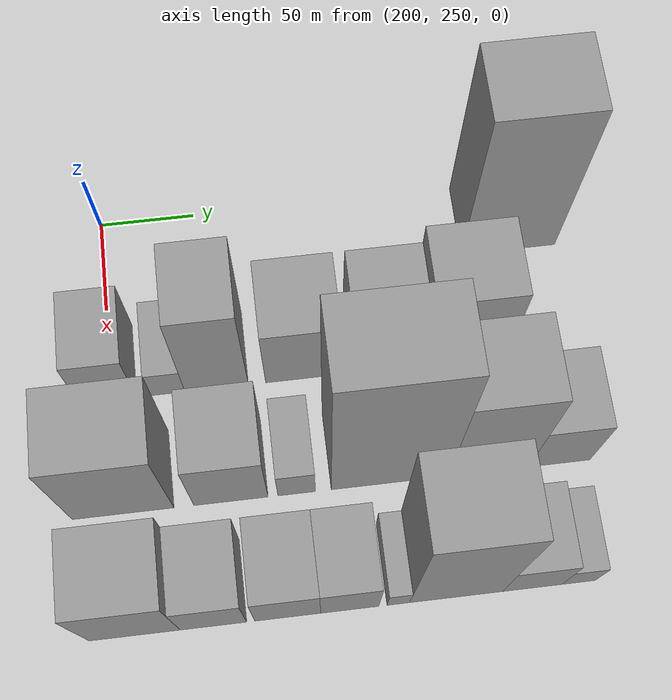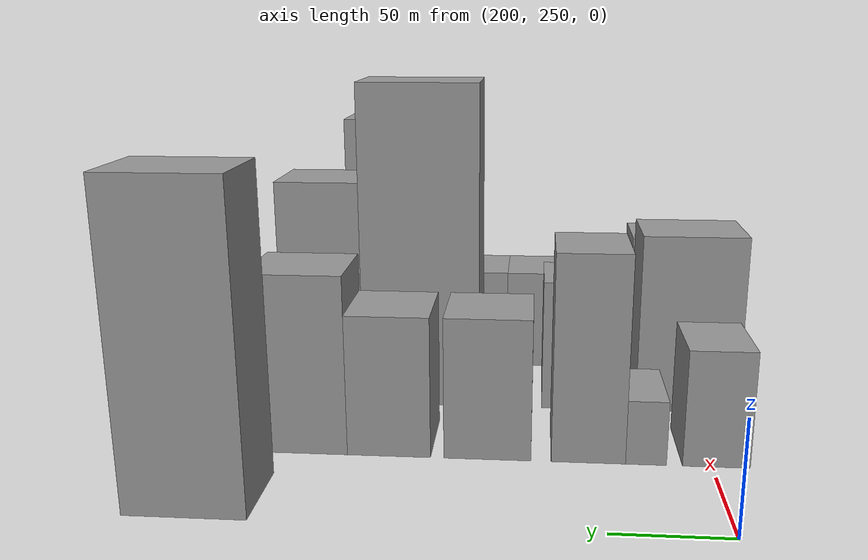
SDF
<sdf version="1.6">
 <world name="default">
  <model name="building_151">
   <static>1</static>
   <pose>220.0000 467.1917 0 0.000000 0.000000 0.000000</pose>
   <link name="link">
    <pose>0 0 69.00 0 0 0</pose>
    <collision name="collision"><geometry><box><size>40.0000 51.3293 138.0000</size></box></geometry></collision>
    <visual name="visual">
     <cast_shadows>0</cast_shadows>
     <geometry><box><size>40.0000 51.3293 138.0000</size></box></geometry>
     <material>
      <script>
       <uri>model://grey_wall/materials/scripts</uri>
       <uri>model://grey_wall/materials/textures</uri>
       <name>vrc/grey_wall</name>
      </script>
     </material>
    </visual>
   </link>
  </model>
  <model name="building_204">
   <static>1</static>
   <pose>280.0000 248.2502 0 0.000000 0.000000 0.000000</pose>
   <link name="link">
    <pose>0 0 27.00 0 0 0</pose>
    <collision name="collision"><geometry><box><size>40.0000 29.5138 54.0000</size></box></geometry></collision>
    <visual name="visual">
     <cast_shadows>0</cast_shadows>
     <geometry><box><size>40.0000 29.5138 54.0000</size></box></geometry>
     <material>
      <script>
       <uri>model://grey_wall/materials/scripts</uri>
       <uri>model://grey_wall/materials/textures</uri>
       <name>vrc/grey_wall</name>
      </script>
     </material>
    </visual>
   </link>
  </model>
  <model name="building_205">
   <static>1</static>
   <pose>280.0000 279.0065 0 0.000000 0.000000 0.000000</pose>
   <link name="link">
    <pose>0 0 15.00 0 0 0</pose>
    <collision name="collision"><geometry><box><size>40.0000 17.9990 30.0000</size></box></geometry></collision>
    <visual name="visual">
     <cast_shadows>0</cast_shadows>
     <geometry><box><size>40.0000 17.9990 30.0000</size></box></geometry>
     <material>
      <script>
       <uri>model://grey_wall/materials/scripts</uri>
       <uri>model://grey_wall/materials/textures</uri>
       <name>vrc/grey_wall</name>
      </script>
     </material>
    </visual>
   </link>
  </model>
  <model name="building_206">
   <static>1</static>
   <pose>280.0000 304.4706 0 0.000000 0.000000 0.000000</pose>
   <link name="link">
    <pose>0 0 48.00 0 0 0</pose>
    <collision name="collision"><geometry><box><size>40.0000 32.9291 96.0000</size></box></geometry></collision>
    <visual name="visual">
     <cast_shadows>0</cast_shadows>
     <geometry><box><size>40.0000 32.9291 96.0000</size></box></geometry>
     <material>
      <script>
       <uri>model://grey_wall/materials/scripts</uri>
       <uri>model://grey_wall/materials/textures</uri>
       <name>vrc/grey_wall</name>
      </script>
     </material>
    </visual>
   </link>
  </model>
  <model name="building_207">
   <static>1</static>
   <pose>280.0000 349.5330 0 0.000000 0.000000 0.000000</pose>
   <link name="link">
    <pose>0 0 33.00 0 0 0</pose>
    <collision name="collision"><geometry><box><size>40.0000 39.1957 66.0000</size></box></geometry></collision>
    <visual name="visual">
     <cast_shadows>0</cast_shadows>
     <geometry><box><size>40.0000 39.1957 66.0000</size></box></geometry>
     <material>
      <script>
       <uri>model://grey_wall/materials/scripts</uri>
       <uri>model://grey_wall/materials/textures</uri>
       <name>vrc/grey_wall</name>
      </script>
     </material>
    </visual>
   </link>
  </model>
  <model name="building_208">
   <static>1</static>
   <pose>280.0000 394.0871 0 0.000000 0.000000 0.000000</pose>
   <link name="link">
    <pose>0 0 33.00 0 0 0</pose>
    <collision name="collision"><geometry><box><size>40.0000 37.9124 66.0000</size></box></geometry></collision>
    <visual name="visual">
     <cast_shadows>0</cast_shadows>
     <geometry><box><size>40.0000 37.9124 66.0000</size></box></geometry>
     <material>
      <script>
       <uri>model://grey_wall/materials/scripts</uri>
       <uri>model://grey_wall/materials/textures</uri>
       <name>vrc/grey_wall</name>
      </script>
     </material>
    </visual>
   </link>
  </model>
  <model name="building_209">
   <static>1</static>
   <pose>280.0000 434.7887 0 0.000000 0.000000 0.000000</pose>
   <link name="link">
    <pose>0 0 42.00 0 0 0</pose>
    <collision name="collision"><geometry><box><size>40.0000 43.4909 84.0000</size></box></geometry></collision>
    <visual name="visual">
     <cast_shadows>0</cast_shadows>
     <geometry><box><size>40.0000 43.4909 84.0000</size></box></geometry>
     <material>
      <script>
       <uri>model://grey_wall/materials/scripts</uri>
       <uri>model://grey_wall/materials/textures</uri>
       <name>vrc/grey_wall</name>
      </script>
     </material>
    </visual>
   </link>
  </model>
  <model name="building_259">
   <static>1</static>
   <pose>340.0000 252.5606 0 0.000000 0.000000 0.000000</pose>
   <link name="link">
    <pose>0 0 45.00 0 0 0</pose>
    <collision name="collision"><geometry><box><size>40.0000 50.7267 90.0000</size></box></geometry></collision>
    <visual name="visual">
     <cast_shadows>0</cast_shadows>
     <geometry><box><size>40.0000 50.7267 90.0000</size></box></geometry>
     <material>
      <script>
       <uri>model://grey_wall/materials/scripts</uri>
       <uri>model://grey_wall/materials/textures</uri>
       <name>vrc/grey_wall</name>
      </script>
     </material>
    </visual>
   </link>
  </model>
  <model name="building_260">
   <static>1</static>
   <pose>340.0000 306.5453 0 0.000000 0.000000 0.000000</pose>
   <link name="link">
    <pose>0 0 33.00 0 0 0</pose>
    <collision name="collision"><geometry><box><size>40.0000 37.2428 66.0000</size></box></geometry></collision>
    <visual name="visual">
     <cast_shadows>0</cast_shadows>
     <geometry><box><size>40.0000 37.2428 66.0000</size></box></geometry>
     <material>
      <script>
       <uri>model://grey_wall/materials/scripts</uri>
       <uri>model://grey_wall/materials/textures</uri>
       <name>vrc/grey_wall</name>
      </script>
     </material>
    </visual>
   </link>
  </model>
  <model name="building_261">
   <static>1</static>
   <pose>340.0000 339.6156 0 0.000000 0.000000 0.000000</pose>
   <link name="link">
    <pose>0 0 18.00 0 0 0</pose>
    <collision name="collision"><geometry><box><size>40.0000 18.8978 36.0000</size></box></geometry></collision>
    <visual name="visual">
     <cast_shadows>0</cast_shadows>
     <geometry><box><size>40.0000 18.8978 36.0000</size></box></geometry>
     <material>
      <script>
       <uri>model://grey_wall/materials/scripts</uri>
       <uri>model://grey_wall/materials/textures</uri>
       <name>vrc/grey_wall</name>
      </script>
     </material>
    </visual>
   </link>
  </model>
  <model name="building_262">
   <static>1</static>
   <pose>340.0000 386.6657 0 0.000000 0.000000 0.000000</pose>
   <link name="link">
    <pose>0 0 81.00 0 0 0</pose>
    <collision name="collision"><geometry><box><size>40.0000 59.2025 162.0000</size></box></geometry></collision>
    <visual name="visual">
     <cast_shadows>0</cast_shadows>
     <geometry><box><size>40.0000 59.2025 162.0000</size></box></geometry>
     <material>
      <script>
       <uri>model://grey_wall/materials/scripts</uri>
       <uri>model://grey_wall/materials/textures</uri>
       <name>vrc/grey_wall</name>
      </script>
     </material>
    </visual>
   </link>
  </model>
  <model name="building_263">
   <static>1</static>
   <pose>340.0000 436.9140 0 0.000000 0.000000 0.000000</pose>
   <link name="link">
    <pose>0 0 57.00 0 0 0</pose>
    <collision name="collision"><geometry><box><size>40.0000 41.2940 114.0000</size></box></geometry></collision>
    <visual name="visual">
     <cast_shadows>0</cast_shadows>
     <geometry><box><size>40.0000 41.2940 114.0000</size></box></geometry>
     <material>
      <script>
       <uri>model://grey_wall/materials/scripts</uri>
       <uri>model://grey_wall/materials/textures</uri>
       <name>vrc/grey_wall</name>
      </script>
     </material>
    </visual>
   </link>
  </model>
  <model name="building_264">
   <static>1</static>
   <pose>340.0000 473.3008 0 0.000000 0.000000 0.000000</pose>
   <link name="link">
    <pose>0 0 30.00 0 0 0</pose>
    <collision name="collision"><geometry><box><size>40.0000 31.4795 60.0000</size></box></geometry></collision>
    <visual name="visual">
     <cast_shadows>0</cast_shadows>
     <geometry><box><size>40.0000 31.4795 60.0000</size></box></geometry>
     <material>
      <script>
       <uri>model://grey_wall/materials/scripts</uri>
       <uri>model://grey_wall/materials/textures</uri>
       <name>vrc/grey_wall</name>
      </script>
     </material>
    </visual>
   </link>
  </model>
  <model name="building_314">
   <static>1</static>
   <pose>400.0000 254.6489 0 0.000000 0.000000 0.000000</pose>
   <link name="link">
    <pose>0 0 37.50 0 0 0</pose>
    <collision name="collision"><geometry><box><size>40.0000 43.9401 75.0000</size></box></geometry></collision>
    <visual name="visual">
     <cast_shadows>0</cast_shadows>
     <geometry><box><size>40.0000 43.9401 75.0000</size></box></geometry>
     <material>
      <script>
       <uri>model://grey_wall/materials/scripts</uri>
       <uri>model://grey_wall/materials/textures</uri>
       <name>vrc/grey_wall</name>
      </script>
     </material>
    </visual>
   </link>
  </model>
  <model name="building_315">
   <static>1</static>
   <pose>400.0000 292.6887 0 0.000000 0.000000 0.000000</pose>
   <link name="link">
    <pose>0 0 27.00 0 0 0</pose>
    <collision name="collision"><geometry><box><size>40.0000 32.1395 54.0000</size></box></geometry></collision>
    <visual name="visual">
     <cast_shadows>0</cast_shadows>
     <geometry><box><size>40.0000 32.1395 54.0000</size></box></geometry>
     <material>
      <script>
       <uri>model://grey_wall/materials/scripts</uri>
       <uri>model://grey_wall/materials/textures</uri>
       <name>vrc/grey_wall</name>
      </script>
     </material>
    </visual>
   </link>
  </model>
  <model name="building_316">
   <static>1</static>
   <pose>400.0000 328.7437 0 0.000000 0.000000 0.000000</pose>
   <link name="link">
    <pose>0 0 27.00 0 0 0</pose>
    <collision name="collision"><geometry><box><size>40.0000 31.9705 54.0000</size></box></geometry></collision>
    <visual name="visual">
     <cast_shadows>0</cast_shadows>
     <geometry><box><size>40.0000 31.9705 54.0000</size></box></geometry>
     <material>
      <script>
       <uri>model://grey_wall/materials/scripts</uri>
       <uri>model://grey_wall/materials/textures</uri>
       <name>vrc/grey_wall</name>
      </script>
     </material>
    </visual>
   </link>
  </model>
  <model name="building_317">
   <static>1</static>
   <pose>400.0000 358.9829 0 0.000000 0.000000 0.000000</pose>
   <link name="link">
    <pose>0 0 27.00 0 0 0</pose>
    <collision name="collision"><geometry><box><size>40.0000 28.5079 54.0000</size></box></geometry></collision>
    <visual name="visual">
     <cast_shadows>0</cast_shadows>
     <geometry><box><size>40.0000 28.5079 54.0000</size></box></geometry>
     <material>
      <script>
       <uri>model://grey_wall/materials/scripts</uri>
       <uri>model://grey_wall/materials/textures</uri>
       <name>vrc/grey_wall</name>
      </script>
     </material>
    </visual>
   </link>
  </model>
  <model name="building_318">
   <static>1</static>
   <pose>400.0000 382.7478 0 0.000000 0.000000 0.000000</pose>
   <link name="link">
    <pose>0 0 13.50 0 0 0</pose>
    <collision name="collision"><geometry><box><size>40.0000 11.0219 27.0000</size></box></geometry></collision>
    <visual name="visual">
     <cast_shadows>0</cast_shadows>
     <geometry><box><size>40.0000 11.0219 27.0000</size></box></geometry>
     <material>
      <script>
       <uri>model://grey_wall/materials/scripts</uri>
       <uri>model://grey_wall/materials/textures</uri>
       <name>vrc/grey_wall</name>
      </script>
     </material>
    </visual>
   </link>
  </model>
  <model name="building_319">
   <static>1</static>
   <pose>400.0000 411.1861 0 0.000000 0.000000 0.000000</pose>
   <link name="link">
    <pose>0 0 69.00 0 0 0</pose>
    <collision name="collision"><geometry><box><size>40.0000 45.8546 138.0000</size></box></geometry></collision>
    <visual name="visual">
     <cast_shadows>0</cast_shadows>
     <geometry><box><size>40.0000 45.8546 138.0000</size></box></geometry>
     <material>
      <script>
       <uri>model://grey_wall/materials/scripts</uri>
       <uri>model://grey_wall/materials/textures</uri>
       <name>vrc/grey_wall</name>
      </script>
     </material>
    </visual>
   </link>
  </model>
  <model name="building_320">
   <static>1</static>
   <pose>400.0000 448.8803 0 0.000000 0.000000 0.000000</pose>
   <link name="link">
    <pose>0 0 25.50 0 0 0</pose>
    <collision name="collision"><geometry><box><size>40.0000 29.5339 51.0000</size></box></geometry></collision>
    <visual name="visual">
     <cast_shadows>0</cast_shadows>
     <geometry><box><size>40.0000 29.5339 51.0000</size></box></geometry>
     <material>
      <script>
       <uri>model://grey_wall/materials/scripts</uri>
       <uri>model://grey_wall/materials/textures</uri>
       <name>vrc/grey_wall</name>
      </script>
     </material>
    </visual>
   </link>
  </model>
  <model name="building_321">
   <static>1</static>
   <pose>400.0000 471.9364 0 0.000000 0.000000 0.000000</pose>
   <link name="link">
    <pose>0 0 16.50 0 0 0</pose>
    <collision name="collision"><geometry><box><size>40.0000 16.5782 33.0000</size></box></geometry></collision>
    <visual name="visual">
     <cast_shadows>0</cast_shadows>
     <geometry><box><size>40.0000 16.5782 33.0000</size></box></geometry>
     <material>
      <script>
       <uri>model://grey_wall/materials/scripts</uri>
       <uri>model://grey_wall/materials/textures</uri>
       <name>vrc/grey_wall</name>
      </script>
     </material>
    </visual>
   </link>
  </model>
 </world>
</sdf>
